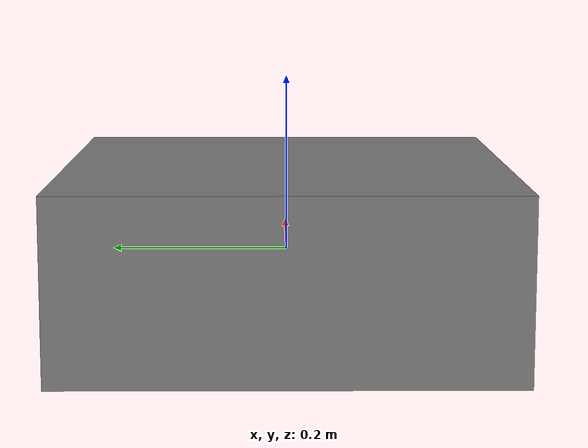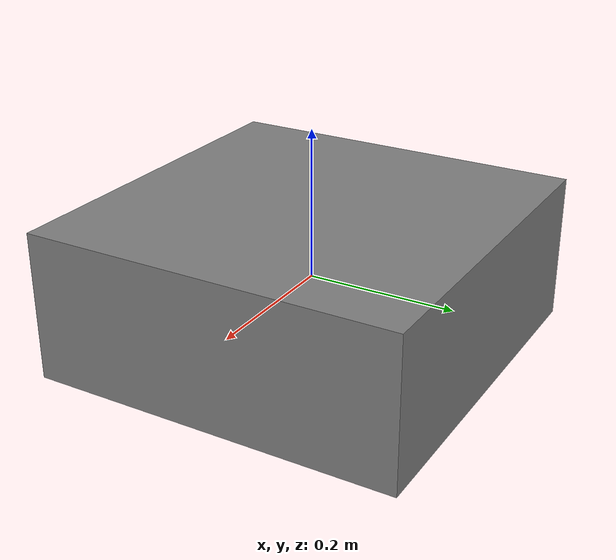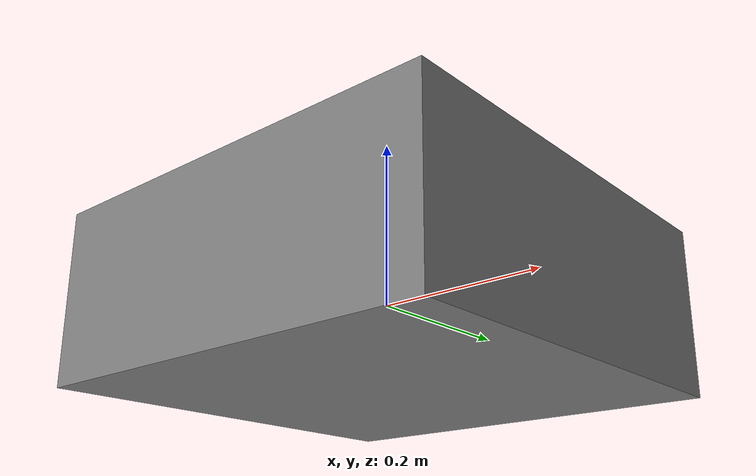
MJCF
<mujoco model="slider_limit">
  <option gravity="0 0 0"/>
  <worldbody>
    <body name="cart" pos="0 0 0">
      <joint name="slider" type="slide" axis="1 0 0" range="-4 4" damping="0.0"/>
      <inertial pos="0 0 0" mass="1.0" diaginertia="1.0 1.0 1.0"/>
      <geom type="box" size="0.25 0.25 0.1" contype="0" conaffinity="0"/>
    </body>
  </worldbody>
</mujoco>
